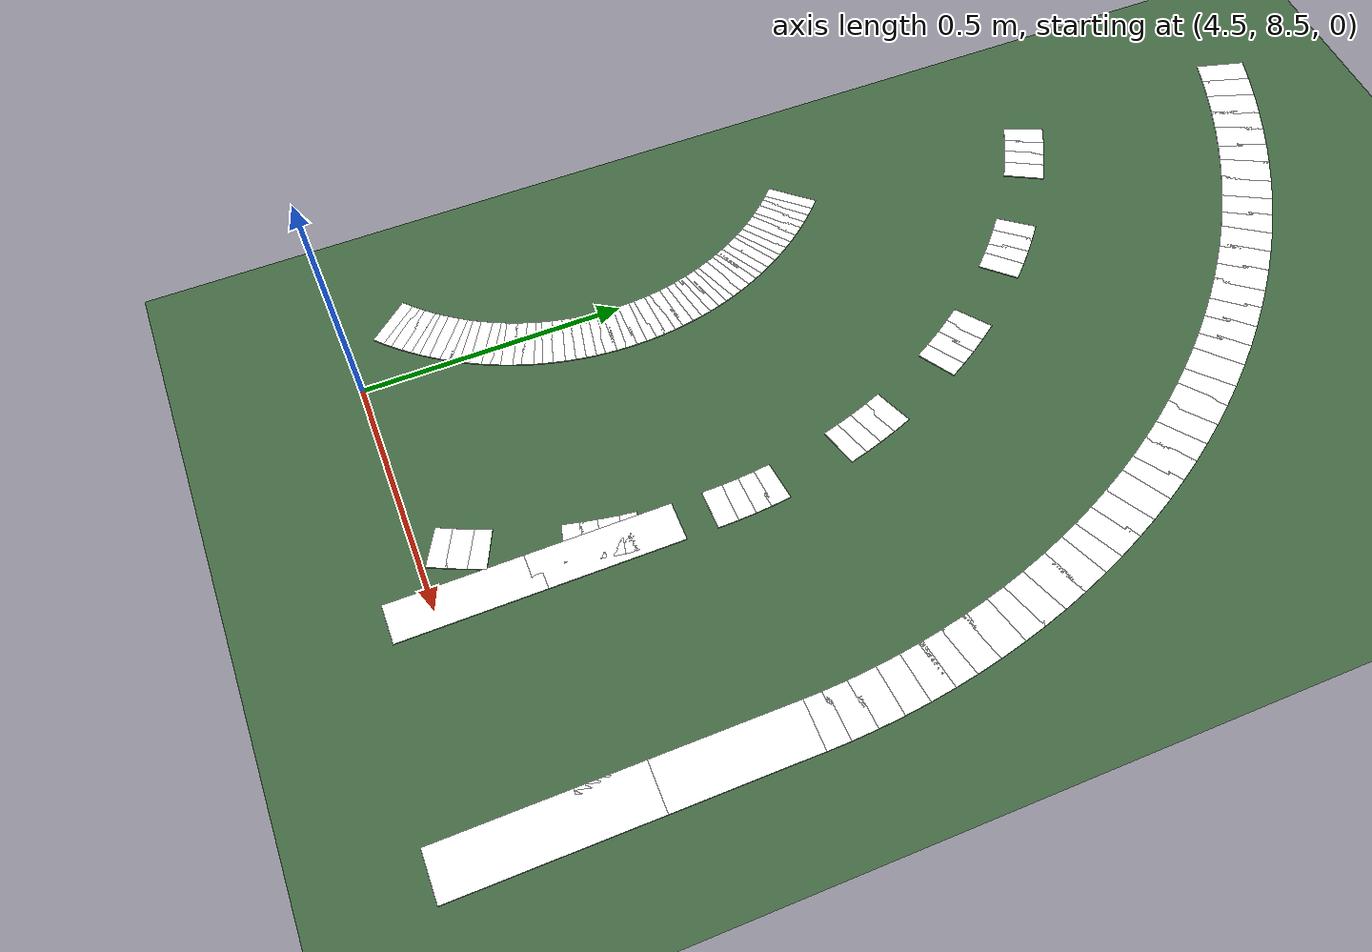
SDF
<sdf version="1.6">
 <world name="university_track">
  <model name="ground_plane">
   <static>true</static>
   <link name="link">
    <collision name="collision">
     <geometry><plane><normal>0 0 1</normal><size>200 200</size></plane></geometry>
    </collision>
    <visual name="visual">
     <geometry><plane><normal>0 0 1</normal><size>200 200</size></plane></geometry>
     <material><ambient>0.25 0.40 0.25 1</ambient><diffuse>0.25 0.40 0.25 1</diffuse></material>
    </visual>
   </link>
  </model>
  <model name="loop_re_28_0">
   <static>true</static>
   <pose>5.4500 8.5549 0.0050 0 0 1.57080</pose>
   <link name="l">
    <visual name="v">
     <geometry><box><size>0.3700 0.1000 0.0020</size></box></geometry>
     <material><ambient>1.0 1.0 1.0 1</ambient><diffuse>1.0 1.0 1.0 1</diffuse></material>
    </visual>
   </link>
  </model>
  <model name="loop_re_29_0">
   <static>true</static>
   <pose>5.4499 8.8126 0.0050 0 0 1.57179</pose>
   <link name="l">
    <visual name="v">
     <geometry><box><size>0.3915 0.1000 0.0020</size></box></geometry>
     <material><ambient>1.0 1.0 1.0 1</ambient><diffuse>1.0 1.0 1.0 1</diffuse></material>
    </visual>
   </link>
  </model>
  <model name="loop_rb_cd_join_28">
   <static>true</static>
   <pose>5.0000 8.5549 0.0060 0 0 1.57080</pose>
   <link name="l">
    <visual name="v">
     <geometry><box><size>0.2700 0.0800 0.0020</size></box></geometry>
     <material><ambient>1.0 1.0 1.0 1</ambient><diffuse>1.0 1.0 1.0 1</diffuse></material>
    </visual>
   </link>
  </model>
  <model name="loop_rb_cd_join_29">
   <static>true</static>
   <pose>5.0000 8.8049 0.0060 0 0 1.57080</pose>
   <link name="l">
    <visual name="v">
     <geometry><box><size>0.2700 0.0800 0.0020</size></box></geometry>
     <material><ambient>1.0 1.0 1.0 1</ambient><diffuse>1.0 1.0 1.0 1</diffuse></material>
    </visual>
   </link>
  </model>
  <model name="roundabout_inner_line_0">
   <static>true</static>
   <pose>4.5499 9.0090 0.0050 0 0 1.58716</pose>
   <link name="l">
    <visual name="v">
     <geometry><box><size>0.0224 0.1000 0.0020</size></box></geometry>
     <material><ambient>1.0 1.0 1.0 1</ambient><diffuse>1.0 1.0 1.0 1</diffuse></material>
    </visual>
   </link>
  </model>
  <model name="roundabout_inner_line_1">
   <static>true</static>
   <pose>4.5493 9.0270 0.0050 0 0 1.61988</pose>
   <link name="l">
    <visual name="v">
     <geometry><box><size>0.0224 0.1000 0.0020</size></box></geometry>
     <material><ambient>1.0 1.0 1.0 1</ambient><diffuse>1.0 1.0 1.0 1</diffuse></material>
    </visual>
   </link>
  </model>
  <model name="roundabout_inner_line_2">
   <static>true</static>
   <pose>4.5481 9.0449 0.0050 0 0 1.65261</pose>
   <link name="l">
    <visual name="v">
     <geometry><box><size>0.0224 0.1000 0.0020</size></box></geometry>
     <material><ambient>1.0 1.0 1.0 1</ambient><diffuse>1.0 1.0 1.0 1</diffuse></material>
    </visual>
   </link>
  </model>
  <model name="roundabout_inner_line_3">
   <static>true</static>
   <pose>4.5463 9.0628 0.0050 0 0 1.68533</pose>
   <link name="l">
    <visual name="v">
     <geometry><box><size>0.0224 0.1000 0.0020</size></box></geometry>
     <material><ambient>1.0 1.0 1.0 1</ambient><diffuse>1.0 1.0 1.0 1</diffuse></material>
    </visual>
   </link>
  </model>
  <model name="roundabout_inner_line_4">
   <static>true</static>
   <pose>4.5440 9.0807 0.0050 0 0 1.71806</pose>
   <link name="l">
    <visual name="v">
     <geometry><box><size>0.0224 0.1000 0.0020</size></box></geometry>
     <material><ambient>1.0 1.0 1.0 1</ambient><diffuse>1.0 1.0 1.0 1</diffuse></material>
    </visual>
   </link>
  </model>
  <model name="roundabout_inner_line_5">
   <static>true</static>
   <pose>4.5410 9.0984 0.0050 0 0 1.75078</pose>
   <link name="l">
    <visual name="v">
     <geometry><box><size>0.0224 0.1000 0.0020</size></box></geometry>
     <material><ambient>1.0 1.0 1.0 1</ambient><diffuse>1.0 1.0 1.0 1</diffuse></material>
    </visual>
   </link>
  </model>
  <model name="roundabout_inner_line_6">
   <static>true</static>
   <pose>4.5375 9.1161 0.0050 0 0 1.78351</pose>
   <link name="l">
    <visual name="v">
     <geometry><box><size>0.0224 0.1000 0.0020</size></box></geometry>
     <material><ambient>1.0 1.0 1.0 1</ambient><diffuse>1.0 1.0 1.0 1</diffuse></material>
    </visual>
   </link>
  </model>
  <model name="roundabout_inner_line_7">
   <static>true</static>
   <pose>4.5334 9.1336 0.0050 0 0 1.81623</pose>
   <link name="l">
    <visual name="v">
     <geometry><box><size>0.0224 0.1000 0.0020</size></box></geometry>
     <material><ambient>1.0 1.0 1.0 1</ambient><diffuse>1.0 1.0 1.0 1</diffuse></material>
    </visual>
   </link>
  </model>
  <model name="roundabout_inner_line_8">
   <static>true</static>
   <pose>4.5288 9.1510 0.0050 0 0 1.84896</pose>
   <link name="l">
    <visual name="v">
     <geometry><box><size>0.0224 0.1000 0.0020</size></box></geometry>
     <material><ambient>1.0 1.0 1.0 1</ambient><diffuse>1.0 1.0 1.0 1</diffuse></material>
    </visual>
   </link>
  </model>
  <model name="roundabout_inner_line_9">
   <static>true</static>
   <pose>4.5236 9.1682 0.0050 0 0 1.88168</pose>
   <link name="l">
    <visual name="v">
     <geometry><box><size>0.0224 0.1000 0.0020</size></box></geometry>
     <material><ambient>1.0 1.0 1.0 1</ambient><diffuse>1.0 1.0 1.0 1</diffuse></material>
    </visual>
   </link>
  </model>
  <model name="roundabout_inner_line_10">
   <static>true</static>
   <pose>4.5178 9.1853 0.0050 0 0 1.91441</pose>
   <link name="l">
    <visual name="v">
     <geometry><box><size>0.0224 0.1000 0.0020</size></box></geometry>
     <material><ambient>1.0 1.0 1.0 1</ambient><diffuse>1.0 1.0 1.0 1</diffuse></material>
    </visual>
   </link>
  </model>
  <model name="roundabout_inner_line_11">
   <static>true</static>
   <pose>4.5114 9.2021 0.0050 0 0 1.94713</pose>
   <link name="l">
    <visual name="v">
     <geometry><box><size>0.0224 0.1000 0.0020</size></box></geometry>
     <material><ambient>1.0 1.0 1.0 1</ambient><diffuse>1.0 1.0 1.0 1</diffuse></material>
    </visual>
   </link>
  </model>
  <model name="roundabout_inner_line_12">
   <static>true</static>
   <pose>4.5046 9.2187 0.0050 0 0 1.97986</pose>
   <link name="l">
    <visual name="v">
     <geometry><box><size>0.0224 0.1000 0.0020</size></box></geometry>
     <material><ambient>1.0 1.0 1.0 1</ambient><diffuse>1.0 1.0 1.0 1</diffuse></material>
    </visual>
   </link>
  </model>
  <model name="roundabout_inner_line_13">
   <static>true</static>
   <pose>4.4971 9.2351 0.0050 0 0 2.01258</pose>
   <link name="l">
    <visual name="v">
     <geometry><box><size>0.0224 0.1000 0.0020</size></box></geometry>
     <material><ambient>1.0 1.0 1.0 1</ambient><diffuse>1.0 1.0 1.0 1</diffuse></material>
    </visual>
   </link>
  </model>
  <model name="roundabout_inner_line_14">
   <static>true</static>
   <pose>4.4892 9.2513 0.0050 0 0 2.04531</pose>
   <link name="l">
    <visual name="v">
     <geometry><box><size>0.0224 0.1000 0.0020</size></box></geometry>
     <material><ambient>1.0 1.0 1.0 1</ambient><diffuse>1.0 1.0 1.0 1</diffuse></material>
    </visual>
   </link>
  </model>
  <model name="roundabout_inner_line_15">
   <static>true</static>
   <pose>4.4807 9.2671 0.0050 0 0 2.07803</pose>
   <link name="l">
    <visual name="v">
     <geometry><box><size>0.0224 0.1000 0.0020</size></box></geometry>
     <material><ambient>1.0 1.0 1.0 1</ambient><diffuse>1.0 1.0 1.0 1</diffuse></material>
    </visual>
   </link>
  </model>
  <model name="roundabout_inner_line_16">
   <static>true</static>
   <pose>4.4717 9.2827 0.0050 0 0 2.11076</pose>
   <link name="l">
    <visual name="v">
     <geometry><box><size>0.0224 0.1000 0.0020</size></box></geometry>
     <material><ambient>1.0 1.0 1.0 1</ambient><diffuse>1.0 1.0 1.0 1</diffuse></material>
    </visual>
   </link>
  </model>
  <model name="roundabout_inner_line_17">
   <static>true</static>
   <pose>4.4622 9.2980 0.0050 0 0 2.14348</pose>
   <link name="l">
    <visual name="v">
     <geometry><box><size>0.0224 0.1000 0.0020</size></box></geometry>
     <material><ambient>1.0 1.0 1.0 1</ambient><diffuse>1.0 1.0 1.0 1</diffuse></material>
    </visual>
   </link>
  </model>
  <model name="roundabout_inner_line_18">
   <static>true</static>
   <pose>4.4522 9.3130 0.0050 0 0 2.17621</pose>
   <link name="l">
    <visual name="v">
     <geometry><box><size>0.0224 0.1000 0.0020</size></box></geometry>
     <material><ambient>1.0 1.0 1.0 1</ambient><diffuse>1.0 1.0 1.0 1</diffuse></material>
    </visual>
   </link>
  </model>
  <model name="roundabout_inner_line_19">
   <static>true</static>
   <pose>4.4417 9.3276 0.0050 0 0 2.20893</pose>
   <link name="l">
    <visual name="v">
     <geometry><box><size>0.0224 0.1000 0.0020</size></box></geometry>
     <material><ambient>1.0 1.0 1.0 1</ambient><diffuse>1.0 1.0 1.0 1</diffuse></material>
    </visual>
   </link>
  </model>
  <model name="roundabout_inner_line_20">
   <static>true</static>
   <pose>4.4308 9.3419 0.0050 0 0 2.24166</pose>
   <link name="l">
    <visual name="v">
     <geometry><box><size>0.0224 0.1000 0.0020</size></box></geometry>
     <material><ambient>1.0 1.0 1.0 1</ambient><diffuse>1.0 1.0 1.0 1</diffuse></material>
    </visual>
   </link>
  </model>
  <model name="roundabout_inner_line_21">
   <static>true</static>
   <pose>4.4193 9.3558 0.0050 0 0 2.27438</pose>
   <link name="l">
    <visual name="v">
     <geometry><box><size>0.0224 0.1000 0.0020</size></box></geometry>
     <material><ambient>1.0 1.0 1.0 1</ambient><diffuse>1.0 1.0 1.0 1</diffuse></material>
    </visual>
   </link>
  </model>
  <model name="roundabout_inner_line_22">
   <static>true</static>
   <pose>4.4075 9.3693 0.0050 0 0 2.30711</pose>
   <link name="l">
    <visual name="v">
     <geometry><box><size>0.0224 0.1000 0.0020</size></box></geometry>
     <material><ambient>1.0 1.0 1.0 1</ambient><diffuse>1.0 1.0 1.0 1</diffuse></material>
    </visual>
   </link>
  </model>
  <model name="roundabout_inner_line_23">
   <static>true</static>
   <pose>4.3952 9.3824 0.0050 0 0 2.33983</pose>
   <link name="l">
    <visual name="v">
     <geometry><box><size>0.0224 0.1000 0.0020</size></box></geometry>
     <material><ambient>1.0 1.0 1.0 1</ambient><diffuse>1.0 1.0 1.0 1</diffuse></material>
    </visual>
   </link>
  </model>
  <model name="roundabout_inner_line_24">
   <static>true</static>
   <pose>4.3824 9.3952 0.0050 0 0 2.37256</pose>
   <link name="l">
    <visual name="v">
     <geometry><box><size>0.0224 0.1000 0.0020</size></box></geometry>
     <material><ambient>1.0 1.0 1.0 1</ambient><diffuse>1.0 1.0 1.0 1</diffuse></material>
    </visual>
   </link>
  </model>
  <model name="roundabout_inner_line_25">
   <static>true</static>
   <pose>4.3693 9.4075 0.0050 0 0 2.40528</pose>
   <link name="l">
    <visual name="v">
     <geometry><box><size>0.0224 0.1000 0.0020</size></box></geometry>
     <material><ambient>1.0 1.0 1.0 1</ambient><diffuse>1.0 1.0 1.0 1</diffuse></material>
    </visual>
   </link>
  </model>
  <model name="roundabout_inner_line_166">
   <static>true</static>
   <pose>4.3693 8.5925 0.0050 0 0 7.01950</pose>
   <link name="l">
    <visual name="v">
     <geometry><box><size>0.0224 0.1000 0.0020</size></box></geometry>
     <material><ambient>1.0 1.0 1.0 1</ambient><diffuse>1.0 1.0 1.0 1</diffuse></material>
    </visual>
   </link>
  </model>
  <model name="roundabout_inner_line_167">
   <static>true</static>
   <pose>4.3824 8.6048 0.0050 0 0 7.05222</pose>
   <link name="l">
    <visual name="v">
     <geometry><box><size>0.0224 0.1000 0.0020</size></box></geometry>
     <material><ambient>1.0 1.0 1.0 1</ambient><diffuse>1.0 1.0 1.0 1</diffuse></material>
    </visual>
   </link>
  </model>
  <model name="roundabout_inner_line_168">
   <static>true</static>
   <pose>4.3952 8.6176 0.0050 0 0 7.08495</pose>
   <link name="l">
    <visual name="v">
     <geometry><box><size>0.0224 0.1000 0.0020</size></box></geometry>
     <material><ambient>1.0 1.0 1.0 1</ambient><diffuse>1.0 1.0 1.0 1</diffuse></material>
    </visual>
   </link>
  </model>
  <model name="roundabout_inner_line_169">
   <static>true</static>
   <pose>4.4075 8.6307 0.0050 0 0 7.11767</pose>
   <link name="l">
    <visual name="v">
     <geometry><box><size>0.0224 0.1000 0.0020</size></box></geometry>
     <material><ambient>1.0 1.0 1.0 1</ambient><diffuse>1.0 1.0 1.0 1</diffuse></material>
    </visual>
   </link>
  </model>
  <model name="roundabout_inner_line_170">
   <static>true</static>
   <pose>4.4193 8.6442 0.0050 0 0 7.15040</pose>
   <link name="l">
    <visual name="v">
     <geometry><box><size>0.0224 0.1000 0.0020</size></box></geometry>
     <material><ambient>1.0 1.0 1.0 1</ambient><diffuse>1.0 1.0 1.0 1</diffuse></material>
    </visual>
   </link>
  </model>
  <model name="roundabout_inner_line_171">
   <static>true</static>
   <pose>4.4308 8.6581 0.0050 0 0 7.18312</pose>
   <link name="l">
    <visual name="v">
     <geometry><box><size>0.0224 0.1000 0.0020</size></box></geometry>
     <material><ambient>1.0 1.0 1.0 1</ambient><diffuse>1.0 1.0 1.0 1</diffuse></material>
    </visual>
   </link>
  </model>
  <model name="roundabout_inner_line_172">
   <static>true</static>
   <pose>4.4417 8.6724 0.0050 0 0 7.21585</pose>
   <link name="l">
    <visual name="v">
     <geometry><box><size>0.0224 0.1000 0.0020</size></box></geometry>
     <material><ambient>1.0 1.0 1.0 1</ambient><diffuse>1.0 1.0 1.0 1</diffuse></material>
    </visual>
   </link>
  </model>
  <model name="roundabout_inner_line_173">
   <static>true</static>
   <pose>4.4522 8.6870 0.0050 0 0 7.24857</pose>
   <link name="l">
    <visual name="v">
     <geometry><box><size>0.0224 0.1000 0.0020</size></box></geometry>
     <material><ambient>1.0 1.0 1.0 1</ambient><diffuse>1.0 1.0 1.0 1</diffuse></material>
    </visual>
   </link>
  </model>
  <model name="roundabout_inner_line_174">
   <static>true</static>
   <pose>4.4622 8.7020 0.0050 0 0 7.28130</pose>
   <link name="l">
    <visual name="v">
     <geometry><box><size>0.0224 0.1000 0.0020</size></box></geometry>
     <material><ambient>1.0 1.0 1.0 1</ambient><diffuse>1.0 1.0 1.0 1</diffuse></material>
    </visual>
   </link>
  </model>
  <model name="roundabout_inner_line_175">
   <static>true</static>
   <pose>4.4717 8.7173 0.0050 0 0 7.31402</pose>
   <link name="l">
    <visual name="v">
     <geometry><box><size>0.0224 0.1000 0.0020</size></box></geometry>
     <material><ambient>1.0 1.0 1.0 1</ambient><diffuse>1.0 1.0 1.0 1</diffuse></material>
    </visual>
   </link>
  </model>
  <model name="roundabout_inner_line_176">
   <static>true</static>
   <pose>4.4807 8.7329 0.0050 0 0 7.34675</pose>
   <link name="l">
    <visual name="v">
     <geometry><box><size>0.0224 0.1000 0.0020</size></box></geometry>
     <material><ambient>1.0 1.0 1.0 1</ambient><diffuse>1.0 1.0 1.0 1</diffuse></material>
    </visual>
   </link>
  </model>
  <model name="roundabout_inner_line_177">
   <static>true</static>
   <pose>4.4892 8.7487 0.0050 0 0 7.37947</pose>
   <link name="l">
    <visual name="v">
     <geometry><box><size>0.0224 0.1000 0.0020</size></box></geometry>
     <material><ambient>1.0 1.0 1.0 1</ambient><diffuse>1.0 1.0 1.0 1</diffuse></material>
    </visual>
   </link>
  </model>
  <model name="roundabout_inner_line_178">
   <static>true</static>
   <pose>4.4971 8.7649 0.0050 0 0 7.41220</pose>
   <link name="l">
    <visual name="v">
     <geometry><box><size>0.0224 0.1000 0.0020</size></box></geometry>
     <material><ambient>1.0 1.0 1.0 1</ambient><diffuse>1.0 1.0 1.0 1</diffuse></material>
    </visual>
   </link>
  </model>
  <model name="roundabout_inner_line_179">
   <static>true</static>
   <pose>4.5046 8.7813 0.0050 0 0 7.44492</pose>
   <link name="l">
    <visual name="v">
     <geometry><box><size>0.0224 0.1000 0.0020</size></box></geometry>
     <material><ambient>1.0 1.0 1.0 1</ambient><diffuse>1.0 1.0 1.0 1</diffuse></material>
    </visual>
   </link>
  </model>
  <model name="roundabout_inner_line_180">
   <static>true</static>
   <pose>4.5114 8.7979 0.0050 0 0 7.47765</pose>
   <link name="l">
    <visual name="v">
     <geometry><box><size>0.0224 0.1000 0.0020</size></box></geometry>
     <material><ambient>1.0 1.0 1.0 1</ambient><diffuse>1.0 1.0 1.0 1</diffuse></material>
    </visual>
   </link>
  </model>
  <model name="roundabout_inner_line_181">
   <static>true</static>
   <pose>4.5178 8.8147 0.0050 0 0 7.51037</pose>
   <link name="l">
    <visual name="v">
     <geometry><box><size>0.0224 0.1000 0.0020</size></box></geometry>
     <material><ambient>1.0 1.0 1.0 1</ambient><diffuse>1.0 1.0 1.0 1</diffuse></material>
    </visual>
   </link>
  </model>
  <model name="roundabout_inner_line_182">
   <static>true</static>
   <pose>4.5236 8.8318 0.0050 0 0 7.54309</pose>
   <link name="l">
    <visual name="v">
     <geometry><box><size>0.0224 0.1000 0.0020</size></box></geometry>
     <material><ambient>1.0 1.0 1.0 1</ambient><diffuse>1.0 1.0 1.0 1</diffuse></material>
    </visual>
   </link>
  </model>
  <model name="roundabout_inner_line_183">
   <static>true</static>
   <pose>4.5288 8.8490 0.0050 0 0 7.57582</pose>
   <link name="l">
    <visual name="v">
     <geometry><box><size>0.0224 0.1000 0.0020</size></box></geometry>
     <material><ambient>1.0 1.0 1.0 1</ambient><diffuse>1.0 1.0 1.0 1</diffuse></material>
    </visual>
   </link>
  </model>
  <model name="roundabout_inner_line_184">
   <static>true</static>
   <pose>4.5334 8.8664 0.0050 0 0 7.60854</pose>
   <link name="l">
    <visual name="v">
     <geometry><box><size>0.0224 0.1000 0.0020</size></box></geometry>
     <material><ambient>1.0 1.0 1.0 1</ambient><diffuse>1.0 1.0 1.0 1</diffuse></material>
    </visual>
   </link>
  </model>
  <model name="roundabout_inner_line_185">
   <static>true</static>
   <pose>4.5375 8.8839 0.0050 0 0 7.64127</pose>
   <link name="l">
    <visual name="v">
     <geometry><box><size>0.0224 0.1000 0.0020</size></box></geometry>
     <material><ambient>1.0 1.0 1.0 1</ambient><diffuse>1.0 1.0 1.0 1</diffuse></material>
    </visual>
   </link>
  </model>
  <model name="roundabout_inner_line_186">
   <static>true</static>
   <pose>4.5410 8.9016 0.0050 0 0 7.67399</pose>
   <link name="l">
    <visual name="v">
     <geometry><box><size>0.0224 0.1000 0.0020</size></box></geometry>
     <material><ambient>1.0 1.0 1.0 1</ambient><diffuse>1.0 1.0 1.0 1</diffuse></material>
    </visual>
   </link>
  </model>
  <model name="roundabout_inner_line_187">
   <static>true</static>
   <pose>4.5440 8.9193 0.0050 0 0 7.70672</pose>
   <link name="l">
    <visual name="v">
     <geometry><box><size>0.0224 0.1000 0.0020</size></box></geometry>
     <material><ambient>1.0 1.0 1.0 1</ambient><diffuse>1.0 1.0 1.0 1</diffuse></material>
    </visual>
   </link>
  </model>
  <model name="roundabout_inner_line_188">
   <static>true</static>
   <pose>4.5463 8.9372 0.0050 0 0 7.73944</pose>
   <link name="l">
    <visual name="v">
     <geometry><box><size>0.0224 0.1000 0.0020</size></box></geometry>
     <material><ambient>1.0 1.0 1.0 1</ambient><diffuse>1.0 1.0 1.0 1</diffuse></material>
    </visual>
   </link>
  </model>
  <model name="roundabout_inner_line_189">
   <static>true</static>
   <pose>4.5481 8.9551 0.0050 0 0 7.77217</pose>
   <link name="l">
    <visual name="v">
     <geometry><box><size>0.0224 0.1000 0.0020</size></box></geometry>
     <material><ambient>1.0 1.0 1.0 1</ambient><diffuse>1.0 1.0 1.0 1</diffuse></material>
    </visual>
   </link>
  </model>
  <model name="roundabout_inner_line_190">
   <static>true</static>
   <pose>4.5493 8.9730 0.0050 0 0 7.80489</pose>
   <link name="l">
    <visual name="v">
     <geometry><box><size>0.0224 0.1000 0.0020</size></box></geometry>
     <material><ambient>1.0 1.0 1.0 1</ambient><diffuse>1.0 1.0 1.0 1</diffuse></material>
    </visual>
   </link>
  </model>
  <model name="roundabout_inner_line_191">
   <static>true</static>
   <pose>4.5499 8.9910 0.0050 0 0 7.83762</pose>
   <link name="l">
    <visual name="v">
     <geometry><box><size>0.0224 0.1000 0.0020</size></box></geometry>
     <material><ambient>1.0 1.0 1.0 1</ambient><diffuse>1.0 1.0 1.0 1</diffuse></material>
    </visual>
   </link>
  </model>
  <model name="roundabout_outer_line_0">
   <static>true</static>
   <pose>5.4496 9.0237 0.0050 0 0 1.58716</pose>
   <link name="l">
    <visual name="v">
     <geometry><box><size>0.0542 0.1000 0.0020</size></box></geometry>
     <material><ambient>1.0 1.0 1.0 1</ambient><diffuse>1.0 1.0 1.0 1</diffuse></material>
    </visual>
   </link>
  </model>
  <model name="roundabout_outer_line_1">
   <static>true</static>
   <pose>5.4481 9.0711 0.0050 0 0 1.61988</pose>
   <link name="l">
    <visual name="v">
     <geometry><box><size>0.0542 0.1000 0.0020</size></box></geometry>
     <material><ambient>1.0 1.0 1.0 1</ambient><diffuse>1.0 1.0 1.0 1</diffuse></material>
    </visual>
   </link>
  </model>
  <model name="roundabout_outer_line_2">
   <static>true</static>
   <pose>5.4450 9.1185 0.0050 0 0 1.65261</pose>
   <link name="l">
    <visual name="v">
     <geometry><box><size>0.0542 0.1000 0.0020</size></box></geometry>
     <material><ambient>1.0 1.0 1.0 1</ambient><diffuse>1.0 1.0 1.0 1</diffuse></material>
    </visual>
   </link>
  </model>
  <model name="roundabout_outer_line_3">
   <static>true</static>
   <pose>5.4403 9.1657 0.0050 0 0 1.68533</pose>
   <link name="l">
    <visual name="v">
     <geometry><box><size>0.0542 0.1000 0.0020</size></box></geometry>
     <material><ambient>1.0 1.0 1.0 1</ambient><diffuse>1.0 1.0 1.0 1</diffuse></material>
    </visual>
   </link>
  </model>
  <model name="roundabout_outer_line_4">
   <static>true</static>
   <pose>5.4341 9.2127 0.0050 0 0 1.71806</pose>
   <link name="l">
    <visual name="v">
     <geometry><box><size>0.0542 0.1000 0.0020</size></box></geometry>
     <material><ambient>1.0 1.0 1.0 1</ambient><diffuse>1.0 1.0 1.0 1</diffuse></material>
    </visual>
   </link>
  </model>
  <model name="roundabout_outer_line_5">
   <static>true</static>
   <pose>5.4264 9.2595 0.0050 0 0 1.75078</pose>
   <link name="l">
    <visual name="v">
     <geometry><box><size>0.0542 0.1000 0.0020</size></box></geometry>
     <material><ambient>1.0 1.0 1.0 1</ambient><diffuse>1.0 1.0 1.0 1</diffuse></material>
    </visual>
   </link>
  </model>
  <model name="roundabout_outer_line_6">
   <static>true</static>
   <pose>5.4171 9.3061 0.0050 0 0 1.78351</pose>
   <link name="l">
    <visual name="v">
     <geometry><box><size>0.0542 0.1000 0.0020</size></box></geometry>
     <material><ambient>1.0 1.0 1.0 1</ambient><diffuse>1.0 1.0 1.0 1</diffuse></material>
    </visual>
   </link>
  </model>
  <model name="roundabout_outer_line_7">
   <static>true</static>
   <pose>5.4064 9.3523 0.0050 0 0 1.81623</pose>
   <link name="l">
    <visual name="v">
     <geometry><box><size>0.0542 0.1000 0.0020</size></box></geometry>
     <material><ambient>1.0 1.0 1.0 1</ambient><diffuse>1.0 1.0 1.0 1</diffuse></material>
    </visual>
   </link>
  </model>
  <model name="roundabout_outer_line_8">
   <static>true</static>
   <pose>5.3941 9.3981 0.0050 0 0 1.84896</pose>
   <link name="l">
    <visual name="v">
     <geometry><box><size>0.0542 0.1000 0.0020</size></box></geometry>
     <material><ambient>1.0 1.0 1.0 1</ambient><diffuse>1.0 1.0 1.0 1</diffuse></material>
    </visual>
   </link>
  </model>
  <model name="roundabout_outer_line_9">
   <static>true</static>
   <pose>5.3803 9.4435 0.0050 0 0 1.88168</pose>
   <link name="l">
    <visual name="v">
     <geometry><box><size>0.0542 0.1000 0.0020</size></box></geometry>
     <material><ambient>1.0 1.0 1.0 1</ambient><diffuse>1.0 1.0 1.0 1</diffuse></material>
    </visual>
   </link>
  </model>
  <model name="roundabout_outer_line_10">
   <static>true</static>
   <pose>5.3651 9.4884 0.0050 0 0 1.91441</pose>
   <link name="l">
    <visual name="v">
     <geometry><box><size>0.0542 0.1000 0.0020</size></box></geometry>
     <material><ambient>1.0 1.0 1.0 1</ambient><diffuse>1.0 1.0 1.0 1</diffuse></material>
    </visual>
   </link>
  </model>
  <model name="roundabout_outer_line_11">
   <static>true</static>
   <pose>5.3483 9.5328 0.0050 0 0 1.94713</pose>
   <link name="l">
    <visual name="v">
     <geometry><box><size>0.0542 0.1000 0.0020</size></box></geometry>
     <material><ambient>1.0 1.0 1.0 1</ambient><diffuse>1.0 1.0 1.0 1</diffuse></material>
    </visual>
   </link>
  </model>
  <model name="roundabout_outer_line_12">
   <static>true</static>
   <pose>5.3302 9.5767 0.0050 0 0 1.97986</pose>
   <link name="l">
    <visual name="v">
     <geometry><box><size>0.0542 0.1000 0.0020</size></box></geometry>
     <material><ambient>1.0 1.0 1.0 1</ambient><diffuse>1.0 1.0 1.0 1</diffuse></material>
    </visual>
   </link>
  </model>
  <model name="roundabout_outer_line_13">
   <static>true</static>
   <pose>5.3106 9.6199 0.0050 0 0 2.01258</pose>
   <link name="l">
    <visual name="v">
     <geometry><box><size>0.0542 0.1000 0.0020</size></box></geometry>
     <material><ambient>1.0 1.0 1.0 1</ambient><diffuse>1.0 1.0 1.0 1</diffuse></material>
    </visual>
   </link>
  </model>
  <model name="roundabout_outer_line_14">
   <static>true</static>
   <pose>5.2896 9.6624 0.0050 0 0 2.04531</pose>
   <link name="l">
    <visual name="v">
     <geometry><box><size>0.0542 0.1000 0.0020</size></box></geometry>
     <material><ambient>1.0 1.0 1.0 1</ambient><diffuse>1.0 1.0 1.0 1</diffuse></material>
    </visual>
   </link>
  </model>
  <model name="roundabout_outer_line_15">
   <static>true</static>
   <pose>5.2673 9.7043 0.0050 0 0 2.07803</pose>
   <link name="l">
    <visual name="v">
     <geometry><box><size>0.0542 0.1000 0.0020</size></box></geometry>
     <material><ambient>1.0 1.0 1.0 1</ambient><diffuse>1.0 1.0 1.0 1</diffuse></material>
    </visual>
   </link>
  </model>
  <model name="roundabout_outer_line_16">
   <static>true</static>
   <pose>5.2435 9.7453 0.0050 0 0 2.11076</pose>
   <link name="l">
    <visual name="v">
     <geometry><box><size>0.0542 0.1000 0.0020</size></box></geometry>
     <material><ambient>1.0 1.0 1.0 1</ambient><diffuse>1.0 1.0 1.0 1</diffuse></material>
    </visual>
   </link>
  </model>
  <model name="roundabout_outer_line_17">
   <static>true</static>
   <pose>5.2185 9.7856 0.0050 0 0 2.14348</pose>
   <link name="l">
    <visual name="v">
     <geometry><box><size>0.0542 0.1000 0.0020</size></box></geometry>
     <material><ambient>1.0 1.0 1.0 1</ambient><diffuse>1.0 1.0 1.0 1</diffuse></material>
    </visual>
   </link>
  </model>
  <model name="roundabout_outer_line_18">
   <static>true</static>
   <pose>5.1921 9.8251 0.0050 0 0 2.17621</pose>
   <link name="l">
    <visual name="v">
     <geometry><box><size>0.0542 0.1000 0.0020</size></box></geometry>
     <material><ambient>1.0 1.0 1.0 1</ambient><diffuse>1.0 1.0 1.0 1</diffuse></material>
    </visual>
   </link>
  </model>
  <model name="roundabout_outer_line_19">
   <static>true</static>
   <pose>5.1645 9.8636 0.0050 0 0 2.20893</pose>
   <link name="l">
    <visual name="v">
     <geometry><box><size>0.0542 0.1000 0.0020</size></box></geometry>
     <material><ambient>1.0 1.0 1.0 1</ambient><diffuse>1.0 1.0 1.0 1</diffuse></material>
    </visual>
   </link>
  </model>
  <model name="roundabout_outer_line_20">
   <static>true</static>
   <pose>5.1356 9.9013 0.0050 0 0 2.24166</pose>
   <link name="l">
    <visual name="v">
     <geometry><box><size>0.0542 0.1000 0.0020</size></box></geometry>
     <material><ambient>1.0 1.0 1.0 1</ambient><diffuse>1.0 1.0 1.0 1</diffuse></material>
    </visual>
   </link>
  </model>
  <model name="roundabout_outer_line_21">
   <static>true</static>
   <pose>5.1055 9.9380 0.0050 0 0 2.27438</pose>
   <link name="l">
    <visual name="v">
     <geometry><box><size>0.0542 0.1000 0.0020</size></box></geometry>
     <material><ambient>1.0 1.0 1.0 1</ambient><diffuse>1.0 1.0 1.0 1</diffuse></material>
    </visual>
   </link>
  </model>
  <model name="roundabout_outer_line_22">
   <static>true</static>
   <pose>5.0742 9.9736 0.0050 0 0 2.30711</pose>
   <link name="l">
    <visual name="v">
     <geometry><box><size>0.0542 0.1000 0.0020</size></box></geometry>
     <material><ambient>1.0 1.0 1.0 1</ambient><diffuse>1.0 1.0 1.0 1</diffuse></material>
    </visual>
   </link>
  </model>
  <model name="roundabout_outer_line_23">
   <static>true</static>
   <pose>5.0418 10.0083 0.0050 0 0 2.33983</pose>
   <link name="l">
    <visual name="v">
     <geometry><box><size>0.0542 0.1000 0.0020</size></box></geometry>
     <material><ambient>1.0 1.0 1.0 1</ambient><diffuse>1.0 1.0 1.0 1</diffuse></material>
    </visual>
   </link>
  </model>
  <model name="roundabout_outer_line_24">
   <static>true</static>
   <pose>5.0083 10.0418 0.0050 0 0 2.37256</pose>
   <link name="l">
    <visual name="v">
     <geometry><box><size>0.0542 0.1000 0.0020</size></box></geometry>
     <material><ambient>1.0 1.0 1.0 1</ambient><diffuse>1.0 1.0 1.0 1</diffuse></material>
    </visual>
   </link>
  </model>
  <model name="roundabout_outer_line_25">
   <static>true</static>
   <pose>4.9736 10.0742 0.0050 0 0 2.40528</pose>
   <link name="l">
    <visual name="v">
     <geometry><box><size>0.0542 0.1000 0.0020</size></box></geometry>
     <material><ambient>1.0 1.0 1.0 1</ambient><diffuse>1.0 1.0 1.0 1</diffuse></material>
    </visual>
   </link>
  </model>
  <model name="roundabout_outer_line_26">
   <static>true</static>
   <pose>4.9380 10.1055 0.0050 0 0 2.43801</pose>
   <link name="l">
    <visual name="v">
     <geometry><box><size>0.0542 0.1000 0.0020</size></box></geometry>
     <material><ambient>1.0 1.0 1.0 1</ambient><diffuse>1.0 1.0 1.0 1</diffuse></material>
    </visual>
   </link>
  </model>
  <model name="roundabout_outer_line_27">
   <static>true</static>
   <pose>4.9013 10.1356 0.0050 0 0 2.47073</pose>
   <link name="l">
    <visual name="v">
     <geometry><box><size>0.0542 0.1000 0.0020</size></box></geometry>
     <material><ambient>1.0 1.0 1.0 1</ambient><diffuse>1.0 1.0 1.0 1</diffuse></material>
    </visual>
   </link>
  </model>
  <model name="roundabout_outer_line_28">
   <static>true</static>
   <pose>4.8636 10.1645 0.0050 0 0 2.50346</pose>
   <link name="l">
    <visual name="v">
     <geometry><box><size>0.0542 0.1000 0.0020</size></box></geometry>
     <material><ambient>1.0 1.0 1.0 1</ambient><diffuse>1.0 1.0 1.0 1</diffuse></material>
    </visual>
   </link>
  </model>
  <model name="roundabout_outer_line_29">
   <static>true</static>
   <pose>4.8251 10.1921 0.0050 0 0 2.53618</pose>
   <link name="l">
    <visual name="v">
     <geometry><box><size>0.0542 0.1000 0.0020</size></box></geometry>
     <material><ambient>1.0 1.0 1.0 1</ambient><diffuse>1.0 1.0 1.0 1</diffuse></material>
    </visual>
   </link>
  </model>
  <model name="roundabout_outer_line_30">
   <static>true</static>
   <pose>4.7856 10.2185 0.0050 0 0 2.56891</pose>
   <link name="l">
    <visual name="v">
     <geometry><box><size>0.0542 0.1000 0.0020</size></box></geometry>
     <material><ambient>1.0 1.0 1.0 1</ambient><diffuse>1.0 1.0 1.0 1</diffuse></material>
    </visual>
   </link>
  </model>
  <model name="roundabout_outer_line_31">
   <static>true</static>
   <pose>4.7453 10.2435 0.0050 0 0 2.60163</pose>
   <link name="l">
    <visual name="v">
     <geometry><box><size>0.0542 0.1000 0.0020</size></box></geometry>
     <material><ambient>1.0 1.0 1.0 1</ambient><diffuse>1.0 1.0 1.0 1</diffuse></material>
    </visual>
   </link>
  </model>
  <model name="roundabout_outer_line_32">
   <static>true</static>
   <pose>4.7043 10.2673 0.0050 0 0 2.63436</pose>
   <link name="l">
    <visual name="v">
     <geometry><box><size>0.0542 0.1000 0.0020</size></box></geometry>
     <material><ambient>1.0 1.0 1.0 1</ambient><diffuse>1.0 1.0 1.0 1</diffuse></material>
    </visual>
   </link>
  </model>
  <model name="roundabout_outer_line_33">
   <static>true</static>
   <pose>4.6624 10.2896 0.0050 0 0 2.66708</pose>
   <link name="l">
    <visual name="v">
     <geometry><box><size>0.0542 0.1000 0.0020</size></box></geometry>
     <material><ambient>1.0 1.0 1.0 1</ambient><diffuse>1.0 1.0 1.0 1</diffuse></material>
    </visual>
   </link>
  </model>
  <model name="roundabout_outer_line_34">
   <static>true</static>
   <pose>4.6199 10.3106 0.0050 0 0 2.69981</pose>
   <link name="l">
    <visual name="v">
     <geometry><box><size>0.0542 0.1000 0.0020</size></box></geometry>
     <material><ambient>1.0 1.0 1.0 1</ambient><diffuse>1.0 1.0 1.0 1</diffuse></material>
    </visual>
   </link>
  </model>
  <model name="roundabout_outer_line_35">
   <static>true</static>
   <pose>4.5767 10.3302 0.0050 0 0 2.73253</pose>
   <link name="l">
    <visual name="v">
     <geometry><box><size>0.0542 0.1000 0.0020</size></box></geometry>
     <material><ambient>1.0 1.0 1.0 1</ambient><diffuse>1.0 1.0 1.0 1</diffuse></material>
    </visual>
   </link>
  </model>
  <model name="roundabout_outer_line_36">
   <static>true</static>
   <pose>4.5328 10.3483 0.0050 0 0 2.76526</pose>
   <link name="l">
    <visual name="v">
     <geometry><box><size>0.0542 0.1000 0.0020</size></box></geometry>
     <material><ambient>1.0 1.0 1.0 1</ambient><diffuse>1.0 1.0 1.0 1</diffuse></material>
    </visual>
   </link>
  </model>
  <model name="roundabout_outer_line_37">
   <static>true</static>
   <pose>4.4884 10.3651 0.0050 0 0 2.79798</pose>
   <link name="l">
    <visual name="v">
     <geometry><box><size>0.0542 0.1000 0.0020</size></box></geometry>
     <material><ambient>1.0 1.0 1.0 1</ambient><diffuse>1.0 1.0 1.0 1</diffuse></material>
    </visual>
   </link>
  </model>
  <model name="roundabout_outer_line_38">
   <static>true</static>
   <pose>4.4435 10.3803 0.0050 0 0 2.83071</pose>
   <link name="l">
    <visual name="v">
     <geometry><box><size>0.0542 0.1000 0.0020</size></box></geometry>
     <material><ambient>1.0 1.0 1.0 1</ambient><diffuse>1.0 1.0 1.0 1</diffuse></material>
    </visual>
   </link>
  </model>
  <model name="roundabout_outer_line_39">
   <static>true</static>
   <pose>4.3981 10.3941 0.0050 0 0 2.86343</pose>
   <link name="l">
    <visual name="v">
     <geometry><box><size>0.0542 0.1000 0.0020</size></box></geometry>
     <material><ambient>1.0 1.0 1.0 1</ambient><diffuse>1.0 1.0 1.0 1</diffuse></material>
    </visual>
   </link>
  </model>
  <model name="roundabout_center_dash_0">
   <static>true</static>
   <pose>4.9997 9.0164 0.0060 0 0 1.58716</pose>
   <link name="l">
    <visual name="v">
     <geometry><box><size>0.0383 0.0800 0.0020</size></box></geometry>
     <material><ambient>1.0 1.0 1.0 1</ambient><diffuse>1.0 1.0 1.0 1</diffuse></material>
    </visual>
   </link>
  </model>
  <model name="roundabout_center_dash_1">
   <static>true</static>
   <pose>4.9987 9.0491 0.0060 0 0 1.61988</pose>
   <link name="l">
    <visual name="v">
     <geometry><box><size>0.0383 0.0800 0.0020</size></box></geometry>
     <material><ambient>1.0 1.0 1.0 1</ambient><diffuse>1.0 1.0 1.0 1</diffuse></material>
    </visual>
   </link>
  </model>
  <model name="roundabout_center_dash_2">
   <static>true</static>
   <pose>4.9965 9.0817 0.0060 0 0 1.65261</pose>
   <link name="l">
    <visual name="v">
     <geometry><box><size>0.0383 0.0800 0.0020</size></box></geometry>
     <material><ambient>1.0 1.0 1.0 1</ambient><diffuse>1.0 1.0 1.0 1</diffuse></material>
    </visual>
   </link>
  </model>
  <model name="roundabout_center_dash_3">
   <static>true</static>
   <pose>4.9933 9.1143 0.0060 0 0 1.68533</pose>
   <link name="l">
    <visual name="v">
     <geometry><box><size>0.0383 0.0800 0.0020</size></box></geometry>
     <material><ambient>1.0 1.0 1.0 1</ambient><diffuse>1.0 1.0 1.0 1</diffuse></material>
    </visual>
   </link>
  </model>
  <model name="roundabout_center_dash_8">
   <static>true</static>
   <pose>4.9614 9.2746 0.0060 0 0 1.84896</pose>
   <link name="l">
    <visual name="v">
     <geometry><box><size>0.0383 0.0800 0.0020</size></box></geometry>
     <material><ambient>1.0 1.0 1.0 1</ambient><diffuse>1.0 1.0 1.0 1</diffuse></material>
    </visual>
   </link>
  </model>
  <model name="roundabout_center_dash_9">
   <static>true</static>
   <pose>4.9519 9.3059 0.0060 0 0 1.88168</pose>
   <link name="l">
    <visual name="v">
     <geometry><box><size>0.0383 0.0800 0.0020</size></box></geometry>
     <material><ambient>1.0 1.0 1.0 1</ambient><diffuse>1.0 1.0 1.0 1</diffuse></material>
    </visual>
   </link>
  </model>
  <model name="roundabout_center_dash_10">
   <static>true</static>
   <pose>4.9414 9.3368 0.0060 0 0 1.91441</pose>
   <link name="l">
    <visual name="v">
     <geometry><box><size>0.0383 0.0800 0.0020</size></box></geometry>
     <material><ambient>1.0 1.0 1.0 1</ambient><diffuse>1.0 1.0 1.0 1</diffuse></material>
    </visual>
   </link>
  </model>
  <model name="roundabout_center_dash_11">
   <static>true</static>
   <pose>4.9299 9.3675 0.0060 0 0 1.94713</pose>
   <link name="l">
    <visual name="v">
     <geometry><box><size>0.0383 0.0800 0.0020</size></box></geometry>
     <material><ambient>1.0 1.0 1.0 1</ambient><diffuse>1.0 1.0 1.0 1</diffuse></material>
    </visual>
   </link>
  </model>
  <model name="roundabout_center_dash_16">
   <static>true</static>
   <pose>4.8576 9.5140 0.0060 0 0 2.11076</pose>
   <link name="l">
    <visual name="v">
     <geometry><box><size>0.0383 0.0800 0.0020</size></box></geometry>
     <material><ambient>1.0 1.0 1.0 1</ambient><diffuse>1.0 1.0 1.0 1</diffuse></material>
    </visual>
   </link>
  </model>
  <model name="roundabout_center_dash_17">
   <static>true</static>
   <pose>4.8403 9.5418 0.0060 0 0 2.14348</pose>
   <link name="l">
    <visual name="v">
     <geometry><box><size>0.0383 0.0800 0.0020</size></box></geometry>
     <material><ambient>1.0 1.0 1.0 1</ambient><diffuse>1.0 1.0 1.0 1</diffuse></material>
    </visual>
   </link>
  </model>
  <model name="roundabout_center_dash_18">
   <static>true</static>
   <pose>4.8222 9.5690 0.0060 0 0 2.17621</pose>
   <link name="l">
    <visual name="v">
     <geometry><box><size>0.0383 0.0800 0.0020</size></box></geometry>
     <material><ambient>1.0 1.0 1.0 1</ambient><diffuse>1.0 1.0 1.0 1</diffuse></material>
    </visual>
   </link>
  </model>
  <model name="roundabout_center_dash_19">
   <static>true</static>
   <pose>4.8031 9.5956 0.0060 0 0 2.20893</pose>
   <link name="l">
    <visual name="v">
     <geometry><box><size>0.0383 0.0800 0.0020</size></box></geometry>
     <material><ambient>1.0 1.0 1.0 1</ambient><diffuse>1.0 1.0 1.0 1</diffuse></material>
    </visual>
   </link>
  </model>
  <model name="roundabout_center_dash_24">
   <static>true</static>
   <pose>4.6953 9.7185 0.0060 0 0 2.37256</pose>
   <link name="l">
    <visual name="v">
     <geometry><box><size>0.0383 0.0800 0.0020</size></box></geometry>
     <material><ambient>1.0 1.0 1.0 1</ambient><diffuse>1.0 1.0 1.0 1</diffuse></material>
    </visual>
   </link>
  </model>
  <model name="roundabout_center_dash_25">
   <static>true</static>
   <pose>4.6715 9.7409 0.0060 0 0 2.40528</pose>
   <link name="l">
    <visual name="v">
     <geometry><box><size>0.0383 0.0800 0.0020</size></box></geometry>
     <material><ambient>1.0 1.0 1.0 1</ambient><diffuse>1.0 1.0 1.0 1</diffuse></material>
    </visual>
   </link>
  </model>
  <model name="roundabout_center_dash_26">
   <static>true</static>
   <pose>4.6469 9.7624 0.0060 0 0 2.43801</pose>
   <link name="l">
    <visual name="v">
     <geometry><box><size>0.0383 0.0800 0.0020</size></box></geometry>
     <material><ambient>1.0 1.0 1.0 1</ambient><diffuse>1.0 1.0 1.0 1</diffuse></material>
    </visual>
   </link>
  </model>
  <model name="roundabout_center_dash_27">
   <static>true</static>
   <pose>4.6216 9.7832 0.0060 0 0 2.47073</pose>
   <link name="l">
    <visual name="v">
     <geometry><box><size>0.0383 0.0800 0.0020</size></box></geometry>
     <material><ambient>1.0 1.0 1.0 1</ambient><diffuse>1.0 1.0 1.0 1</diffuse></material>
    </visual>
   </link>
  </model>
  <model name="roundabout_center_dash_32">
   <static>true</static>
   <pose>4.4857 9.8740 0.0060 0 0 2.63436</pose>
   <link name="l">
    <visual name="v">
     <geometry><box><size>0.0383 0.0800 0.0020</size></box></geometry>
     <material><ambient>1.0 1.0 1.0 1</ambient><diffuse>1.0 1.0 1.0 1</diffuse></material>
    </visual>
   </link>
  </model>
  <model name="roundabout_center_dash_33">
   <static>true</static>
   <pose>4.4568 9.8894 0.0060 0 0 2.66708</pose>
   <link name="l">
    <visual name="v">
     <geometry><box><size>0.0383 0.0800 0.0020</size></box></geometry>
     <material><ambient>1.0 1.0 1.0 1</ambient><diffuse>1.0 1.0 1.0 1</diffuse></material>
    </visual>
   </link>
  </model>
  <model name="roundabout_center_dash_34">
   <static>true</static>
   <pose>4.4275 9.9039 0.0060 0 0 2.69981</pose>
   <link name="l">
    <visual name="v">
     <geometry><box><size>0.0383 0.0800 0.0020</size></box></geometry>
     <material><ambient>1.0 1.0 1.0 1</ambient><diffuse>1.0 1.0 1.0 1</diffuse></material>
    </visual>
   </link>
  </model>
  <model name="roundabout_center_dash_35">
   <static>true</static>
   <pose>4.3977 9.9174 0.0060 0 0 2.73253</pose>
   <link name="l">
    <visual name="v">
     <geometry><box><size>0.0383 0.0800 0.0020</size></box></geometry>
     <material><ambient>1.0 1.0 1.0 1</ambient><diffuse>1.0 1.0 1.0 1</diffuse></material>
    </visual>
   </link>
  </model>
  <model name="roundabout_center_dash_177">
   <static>true</static>
   <pose>4.8894 8.5432 0.0060 0 0 7.37947</pose>
   <link name="l">
    <visual name="v">
     <geometry><box><size>0.0383 0.0800 0.0020</size></box></geometry>
     <material><ambient>1.0 1.0 1.0 1</ambient><diffuse>1.0 1.0 1.0 1</diffuse></material>
    </visual>
   </link>
  </model>
  <model name="roundabout_center_dash_178">
   <static>true</static>
   <pose>4.9039 8.5725 0.0060 0 0 7.41220</pose>
   <link name="l">
    <visual name="v">
     <geometry><box><size>0.0383 0.0800 0.0020</size></box></geometry>
     <material><ambient>1.0 1.0 1.0 1</ambient><diffuse>1.0 1.0 1.0 1</diffuse></material>
    </visual>
   </link>
  </model>
  <model name="roundabout_center_dash_179">
   <static>true</static>
   <pose>4.9174 8.6023 0.0060 0 0 7.44492</pose>
   <link name="l">
    <visual name="v">
     <geometry><box><size>0.0383 0.0800 0.0020</size></box></geometry>
     <material><ambient>1.0 1.0 1.0 1</ambient><diffuse>1.0 1.0 1.0 1</diffuse></material>
    </visual>
   </link>
  </model>
  <model name="roundabout_center_dash_184">
   <static>true</static>
   <pose>4.9699 8.7571 0.0060 0 0 7.60854</pose>
   <link name="l">
    <visual name="v">
     <geometry><box><size>0.0383 0.0800 0.0020</size></box></geometry>
     <material><ambient>1.0 1.0 1.0 1</ambient><diffuse>1.0 1.0 1.0 1</diffuse></material>
    </visual>
   </link>
  </model>
  <model name="roundabout_center_dash_185">
   <static>true</static>
   <pose>4.9773 8.7889 0.0060 0 0 7.64127</pose>
   <link name="l">
    <visual name="v">
     <geometry><box><size>0.0383 0.0800 0.0020</size></box></geometry>
     <material><ambient>1.0 1.0 1.0 1</ambient><diffuse>1.0 1.0 1.0 1</diffuse></material>
    </visual>
   </link>
  </model>
  <model name="roundabout_center_dash_186">
   <static>true</static>
   <pose>4.9837 8.8210 0.0060 0 0 7.67399</pose>
   <link name="l">
    <visual name="v">
     <geometry><box><size>0.0383 0.0800 0.0020</size></box></geometry>
     <material><ambient>1.0 1.0 1.0 1</ambient><diffuse>1.0 1.0 1.0 1</diffuse></material>
    </visual>
   </link>
  </model>
  <model name="roundabout_center_dash_187">
   <static>true</static>
   <pose>4.9890 8.8533 0.0060 0 0 7.70672</pose>
   <link name="l">
    <visual name="v">
     <geometry><box><size>0.0383 0.0800 0.0020</size></box></geometry>
     <material><ambient>1.0 1.0 1.0 1</ambient><diffuse>1.0 1.0 1.0 1</diffuse></material>
    </visual>
   </link>
  </model>
 </world>
</sdf>
